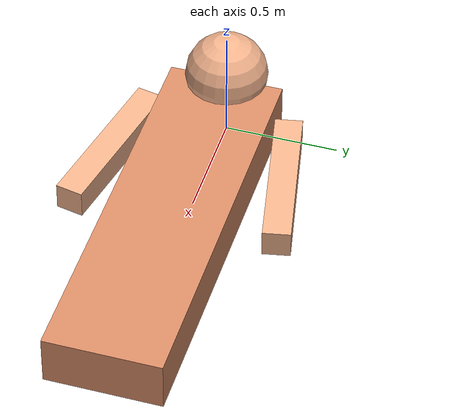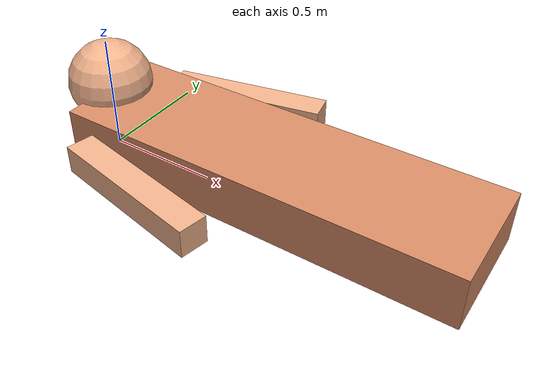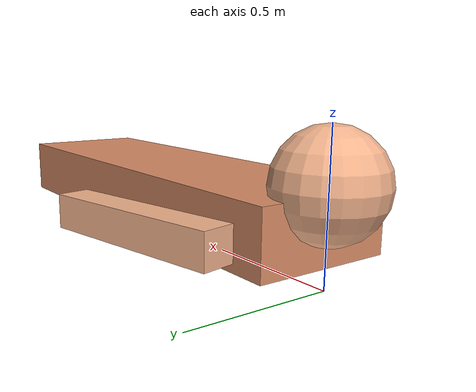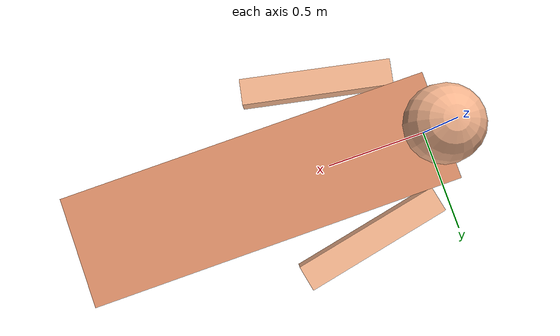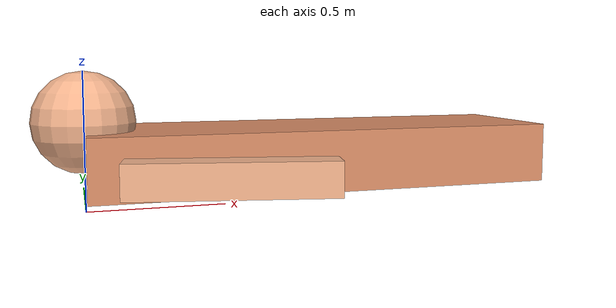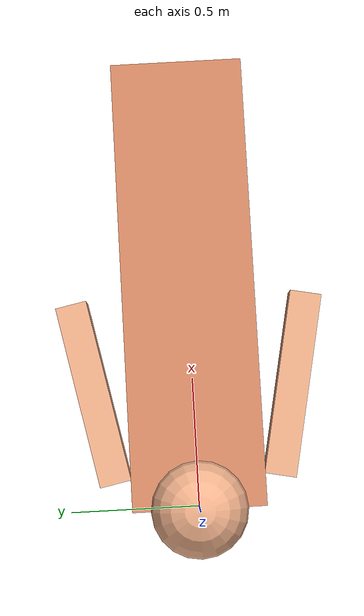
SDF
<?xml version="1.0"?>
<sdf version="1.9">
  <model name="lying_patient"><static>true</static>
    <link name="body">
      <visual name="torso"><pose>0.85 0 0.18 0 0 0</pose><geometry><box><size>1.7 0.50 0.22</size></box></geometry><material><diffuse>0.85 0.55 0.40 1</diffuse></material></visual>
      <visual name="head"><pose>0.0 0 0.32 0 0 0</pose><geometry><sphere><radius>0.18</radius></sphere></geometry><material><diffuse>0.95 0.70 0.55 1</diffuse></material></visual>
      <visual name="left_arm"><pose>0.45 0.38 0.16 0 0 0.2</pose><geometry><box><size>0.70 0.12 0.12</size></box></geometry><material><diffuse>0.95 0.70 0.55 1</diffuse></material></visual>
      <visual name="right_arm"><pose>0.45 -0.38 0.16 0 0 -0.2</pose><geometry><box><size>0.70 0.12 0.12</size></box></geometry><material><diffuse>0.95 0.70 0.55 1</diffuse></material></visual>
    </link>
  </model>
</sdf>
